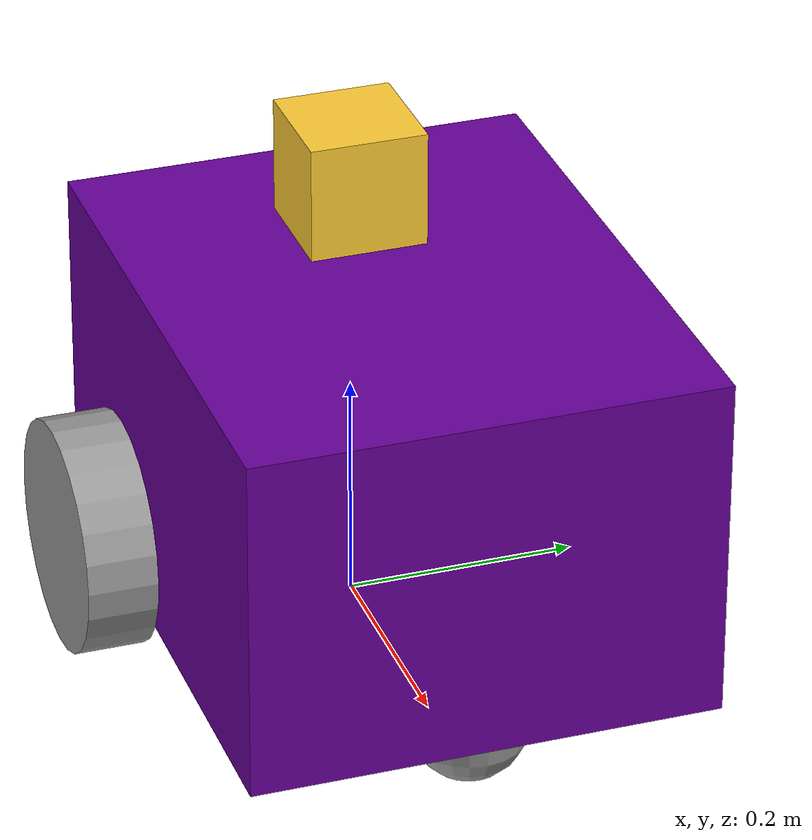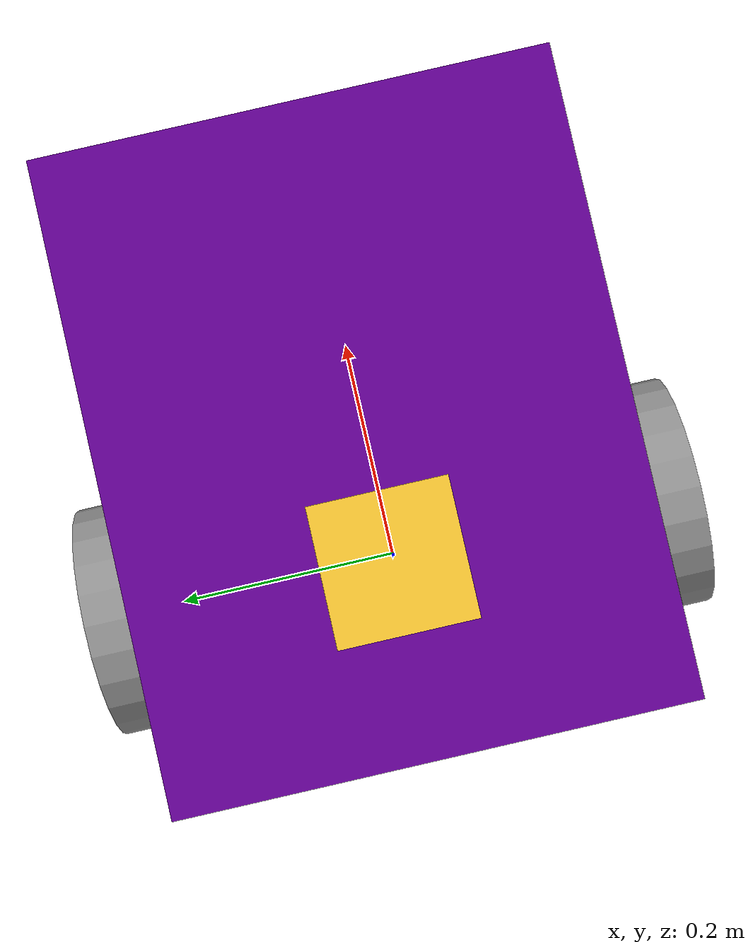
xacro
<?xml version="1.0"?>

<robot name="diff_drive_example" xmlns:xacro="http://www.ros.org/wiki/xacro">

<!-- Materials -->
<material name="uom_purple">
    <color rgba="0.4 0 0.6 1"/>
</material>

<material name="uom_yellow">
    <color rgba="1.0 0.8 0.2 1"/>
</material>

<material name="uom_grey">
    <color rgba="0.6 0.6 0.6 1"/>
</material>

<!-- Values -->
<xacro:property name="base_link_x" value="0.5" />
<xacro:property name="base_link_y" value="0.4" />
<xacro:property name="base_link_z" value="0.3" />
<xacro:property name="base_link_origin_x" value="0.10" />
<xacro:property name="base_link_origin_z" value="0.10" />

<xacro:property name="wheel_length" value="0.06" />
<xacro:property name="wheel_radius" value="0.10" />
<xacro:property name="wheel_mass" value="1.2" />

<xacro:property name="camera_mass" value="0.12" />
<xacro:property name="camera_width" value="0.10" />
<xacro:property name="camera_height" value="0.08" />

<xacro:property name="castor_radius" value="${wheel_radius - (0.5*base_link_z - base_link_origin_z)}"/>
<xacro:property name="castor_mass" value="0.025" />
<xacro:property name="noise_mean" value="0.01" />

<!-- Macros -->
<xacro:macro name="wheel" params="name length radius mass reflect:=1">
  <link name="${name}">
    <visual>
        <geometry>
            <cylinder length="${length}" radius="${radius}" />
        </geometry>
        <material name="uom_grey"/>
        <origin xyz="0 0 ${reflect*length/2}" rpy="0 0 0"/>
    </visual>

    <collision>
        <geometry>
            <cylinder length="${length}" radius="${radius}" />
        </geometry>
        <origin xyz="0 0 ${reflect*length/2}" rpy="0 0 0"/>
    </collision>

    <inertial>
      <mass value="${mass}"/>
      <inertia ixx="${(mass/12)*(3*radius**2 + length**2)}" ixy="0.0" ixz="0.0" iyy="${(mass/12)*(3*radius**2 + length**2)}" iyz="0.0" izz="${(mass/2)*(radius**2)}"/>
      <origin xyz="0 0 ${reflect*length/2}" rpy="0 0 0"/>
    </inertial>
</link>
</xacro:macro>

<xacro:macro name="box_inertia" params="x y z mass origin_x:=0 origin_y:=0 origin_z:=0">
    <inertial>
      <mass value="${mass}"/>
      <inertia ixx="${(mass / 12) * (y**2 + z**2)}" ixy="0.0" ixz="0.0" iyy="${(mass / 12) * (x**2 + z**2)}" iyz="0.0" izz="${(mass / 12) * (x**2 + y**2)}"/>
      <origin xyz="${origin_x} ${origin_y} ${origin_z}" rpy="0 0 0"/>
    </inertial>
</xacro:macro>

<xacro:macro name="box_collision" params="x y z origin_x:=0 origin_y:=0 origin_z:=0">
    <collision>
        <geometry>
            <box size="${x} ${y} ${z}"/>
        </geometry>
        <origin xyz="${origin_x} ${origin_y} ${origin_z}" rpy="0 0 0"/>
    </collision>
</xacro:macro>

<!-- LINKS -->

<!-- Simple link to act as the root -->
<link name="base_footprint"/>

<!-- Base Link -->
<!-- Written out in full with no macros -->
<link name="base_link">
    <visual>
        <geometry>
            <box size="${base_link_x} ${base_link_y} ${base_link_z}"/>
        </geometry>
        <material name="uom_purple"/>
        <origin xyz="${base_link_origin_x} 0 ${base_link_origin_z}" rpy="0 0 0"/>
    </visual>

    <collision>
        <geometry>
            <box size="${base_link_x} ${base_link_y} ${base_link_z}"/>
        </geometry>
        <origin xyz="${base_link_origin_x} 0 ${base_link_origin_z}" rpy="0 0 0"/>
    </collision>

    <inertial>
      <mass value="12"/>
      <inertia ixx="0.25" ixy="0.0" ixz="0.0" iyy="0.34" iyz="0.0" izz="0.41"/>
      <origin xyz="${base_link_origin_x} 0 ${base_link_origin_z}" rpy="0 0 0"/>
    </inertial>
</link>

<!-- camera Link -->
<link name="camera_link">
    <visual>
        <geometry>
            <box size="0.1 0.1 0.1"/>
        </geometry>
        <material name="uom_yellow"/>
        <origin xyz="0 0 0" rpy="0 0 0"/>
    </visual>

    <xacro:box_collision x="${camera_width}" y="${camera_width}" z="${camera_height}" origin_z="-0.015"/>

    <xacro:box_inertia x="${camera_width}" y="${camera_width}" z="${camera_height}" mass="${camera_mass}" origin_z="-0.015"/>
</link>

<!-- Wheel Links -->
<xacro:wheel name="wheel_left" length="${wheel_length}" radius="${wheel_radius}" mass="${wheel_mass}"/>
<xacro:wheel name="wheel_right" length="${wheel_length}" radius="${wheel_radius}" mass="${wheel_mass}" reflect="-1"/>

<!-- Castor Link -->
<link name="front_castor_link">
    <visual>
        <geometry>
            <sphere radius="${castor_radius}"/>
        </geometry>
        <material name="uom_grey"/>
    </visual>

    <collision>
        <geometry>
            <sphere radius="${castor_radius}"/>
        </geometry>
    </collision>

    <xacro:property name="I_castor" value="${(2/5)*castor_mass*castor_radius**2}"/>
    <inertial>
        <mass value="${castor_mass}"/>
        <inertia ixx="${I_castor}" ixy="0.0" ixz="0.0" iyy="${I_castor}" iyz="0.0" izz="${I_castor}"/>
    </inertial>
</link>

<link name="back_castor_link">
    <visual>
        <geometry>
            <sphere radius="${castor_radius}"/>
        </geometry>
        <material name="uom_grey"/>
    </visual>

    <collision>
        <geometry>
            <sphere radius="${castor_radius}"/>
        </geometry>
    </collision>

    <xacro:property name="I_castor" value="${(2/5)*castor_mass*castor_radius**2}"/>
    <inertial>
        <mass value="${castor_mass}"/>
        <inertia ixx="${I_castor}" ixy="0.0" ixz="0.0" iyy="${I_castor}" iyz="0.0" izz="${I_castor}"/>
    </inertial>
</link>

<!-- JOINTS -->
<joint name="base_camera_joint" type="fixed">
    <parent link="base_link"/>
    <child link="camera_link"/>
    <origin xyz="0 0 0.3" rpy="0 0 0"/>
</joint>

<joint name="base_wheel_left_joint" type="continuous">
    <parent link="base_link"/>
    <child link="wheel_left"/>
    <origin xyz="0 ${0.5*base_link_y} 0" rpy="${-0.5 * pi} 0 0"/>
    <axis xyz="0 0 1"/>
</joint>

<joint name="base_wheel_right_joint" type="continuous">
    <parent link="base_link"/>
    <child link="wheel_right"/>
    <origin xyz="0 ${-0.5*base_link_y} 0" rpy="${-0.5 * pi} 0 0"/>
    <axis xyz="0 0 1"/>
</joint>

<joint name="base_front_castor_joint" type="fixed">
    <parent link="base_link"/>
    <child link="front_castor_link"/>
    <origin xyz="0.3 0 ${-0.5*base_link_z + base_link_origin_z}"/>
</joint>

<joint name="base_back_castor_joint" type="fixed">
    <parent link="base_link"/>
    <child link="back_castor_link"/>
    <origin xyz="${-base_link_origin_x} 0 ${-0.5*base_link_z + base_link_origin_z}"/>
</joint>

<joint name="footprint_base_joint" type="fixed">
    <parent link="base_footprint"/>
    <child link="base_link"/>
    <origin xyz="0 0 ${wheel_radius}"/>
</joint>

<xacro:include filename="$(find CA8_package_incomplete)/urdf/example_gazebo.xacro" />

</robot>
